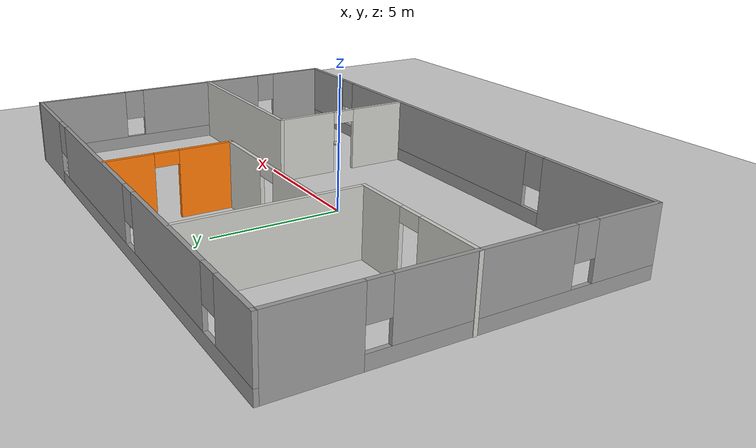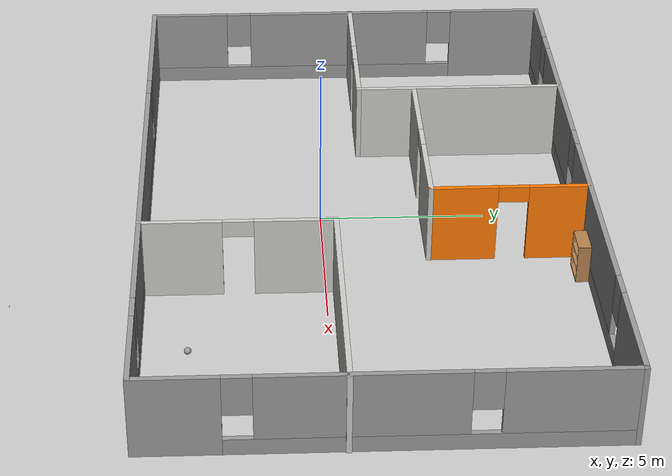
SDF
<sdf version="1.7">
 <world name="default">
  <light name="sun" type="directional">
   <pose>0 0 10 0 -0 0</pose>
   <diffuse>0.8 0.8 0.8 1</diffuse>
   <specular>0.2 0.2 0.2 1</specular>
   <attenuation>
    <range>1000</range>
    <constant>0.9</constant>
    <linear>0.01</linear>
    <quadratic>0.001</quadratic>
   </attenuation>
   <direction>-0.5 0.1 -0.9</direction>
   <spot><inner_angle>0</inner_angle><outer_angle>0</outer_angle><falloff>0</falloff></spot>
  </light>
  <model name="ground_plane">
   <static>1</static>
   <link name="link">
    <collision name="collision">
     <geometry><plane><normal>0 0 1</normal><size>100 100</size></plane></geometry>
     <surface>
      <contact><collide_bitmask>65535</collide_bitmask></contact>
      <friction><ode><mu>100</mu><mu2>50</mu2></ode></friction>
     </surface>
    </collision>
    <visual name="visual">
     <cast_shadows>0</cast_shadows>
     <geometry><plane><normal>0 0 1</normal><size>100 100</size></plane></geometry>
     <material>
      <script><uri>file://media/materials/scripts/gazebo.material</uri><name>Gazebo/Grey</name></script>
     </material>
    </visual>
   </link>
  </model>
  <gravity>0 0 -9.8</gravity>
  <magnetic_field>6e-06 2.3e-05 -4.2e-05</magnetic_field>
  <atmosphere type="adiabatic"/>
  <physics type="ode">
   <max_step_size>0.001</max_step_size>
   <real_time_factor>1</real_time_factor>
   <real_time_update_rate>1000</real_time_update_rate>
  </physics>
  <scene><ambient>0.4 0.4 0.4 1</ambient><background>0.7 0.7 0.7 1</background><shadows>1</shadows></scene>
  <spherical_coordinates>
   <surface_model>EARTH_WGS84</surface_model>
   <latitude_deg>0</latitude_deg>
   <longitude_deg>0</longitude_deg>
   <elevation>0</elevation>
   <heading_deg>0</heading_deg>
  </spherical_coordinates>
  <model name="building">
   <pose>0.90749 1.23439 0 0 -0 0</pose>
   <link name="Wall_36">
    <pose>-9.94002 0.000411 0 0 0 -1.5708</pose>
    <visual name="Wall_36_Visual_0">
     <pose>-5.11376 0 1.25 0 -0 0</pose>
     <geometry><box><size>3.02247 0.15 2.5</size></box></geometry>
     <material>
      <script><uri>file://media/materials/scripts/gazebo.material</uri><name>Gazebo/Grey</name></script>
      <ambient>1 1 1 1</ambient>
     </material>
     <meta><layer>0</layer></meta>
    </visual>
    <collision name="Wall_36_Collision_0">
     <geometry><box><size>3.02247 0.15 2.5</size></box></geometry>
     <pose>-5.11376 0 1.25 0 -0 0</pose>
    </collision>
    <visual name="Wall_36_Visual_1">
     <pose>1.51124 0 0.25 0 -0 0</pose>
     <geometry><box><size>10.2275 0.15 0.5</size></box></geometry>
     <material>
      <script><uri>file://media/materials/scripts/gazebo.material</uri><name>Gazebo/Grey</name></script>
      <ambient>1 1 1 1</ambient>
     </material>
     <meta><layer>0</layer></meta>
    </visual>
    <collision name="Wall_36_Collision_1">
     <geometry><box><size>10.2275 0.15 0.5</size></box></geometry>
     <pose>1.51124 0 0.25 0 -0 0</pose>
    </collision>
    <visual name="Wall_36_Visual_2">
     <pose>0.237934 0 1.5 0 -0 0</pose>
     <geometry><box><size>6.08092 0.15 2</size></box></geometry>
     <material>
      <script><uri>file://media/materials/scripts/gazebo.material</uri><name>Gazebo/Grey</name></script>
      <ambient>1 1 1 1</ambient>
     </material>
     <meta><layer>0</layer></meta>
    </visual>
    <collision name="Wall_36_Collision_2">
     <geometry><box><size>6.08092 0.15 2</size></box></geometry>
     <pose>0.237934 0 1.5 0 -0 0</pose>
    </collision>
    <visual name="Wall_36_Visual_3">
     <pose>5.3517 0 1.5 0 -0 0</pose>
     <geometry><box><size>2.54661 0.15 2</size></box></geometry>
     <material>
      <script><uri>file://media/materials/scripts/gazebo.material</uri><name>Gazebo/Grey</name></script>
      <ambient>1 1 1 1</ambient>
     </material>
     <meta><layer>0</layer></meta>
    </visual>
    <collision name="Wall_36_Collision_3">
     <geometry><box><size>2.54661 0.15 2</size></box></geometry>
     <pose>5.3517 0 1.5 0 -0 0</pose>
    </collision>
    <visual name="Wall_36_Visual_4">
     <pose>-3.20253 0 1.9 0 -0 0</pose>
     <geometry><box><size>0.8 0.15 1.2</size></box></geometry>
     <material>
      <script><uri>file://media/materials/scripts/gazebo.material</uri><name>Gazebo/Grey</name></script>
      <ambient>1 1 1 1</ambient>
     </material>
     <meta><layer>0</layer></meta>
    </visual>
    <collision name="Wall_36_Collision_4">
     <geometry><box><size>0.8 0.15 1.2</size></box></geometry>
     <pose>-3.20253 0 1.9 0 -0 0</pose>
    </collision>
    <visual name="Wall_36_Visual_5">
     <pose>3.67839 0 1.9 0 -0 0</pose>
     <geometry><box><size>0.8 0.15 1.2</size></box></geometry>
     <material>
      <script><uri>file://media/materials/scripts/gazebo.material</uri><name>Gazebo/Grey</name></script>
      <ambient>1 1 1 1</ambient>
     </material>
     <meta><layer>0</layer></meta>
    </visual>
    <collision name="Wall_36_Collision_5">
     <geometry><box><size>0.8 0.15 1.2</size></box></geometry>
     <pose>3.67839 0 1.9 0 -0 0</pose>
    </collision>
   </link>
   <link name="Wall_37">
    <pose>-0.015018 -6.54959 0 0 -0 0</pose>
    <visual name="Wall_37_Visual_0">
     <pose>-7.68289 0 1.25 0 -0 0</pose>
     <geometry><box><size>4.63422 0.15 2.5</size></box></geometry>
     <material>
      <script><uri>file://media/materials/scripts/gazebo.material</uri><name>Gazebo/Grey</name></script>
      <ambient>1 1 1 1</ambient>
     </material>
     <meta><layer>0</layer></meta>
    </visual>
    <collision name="Wall_37_Collision_0">
     <geometry><box><size>4.63422 0.15 2.5</size></box></geometry>
     <pose>-7.68289 0 1.25 0 -0 0</pose>
    </collision>
    <visual name="Wall_37_Visual_1">
     <pose>2.31711 0 0.25 0 -0 0</pose>
     <geometry><box><size>15.3658 0.15 0.5</size></box></geometry>
     <material>
      <script><uri>file://media/materials/scripts/gazebo.material</uri><name>Gazebo/Grey</name></script>
      <ambient>1 1 1 1</ambient>
     </material>
     <meta><layer>0</layer></meta>
    </visual>
    <collision name="Wall_37_Collision_1">
     <geometry><box><size>15.3658 0.15 0.5</size></box></geometry>
     <pose>2.31711 0 0.25 0 -0 0</pose>
    </collision>
    <visual name="Wall_37_Visual_2">
     <pose>0.954291 0 1.5 0 -0 0</pose>
     <geometry><box><size>11.0401 0.15 2</size></box></geometry>
     <material>
      <script><uri>file://media/materials/scripts/gazebo.material</uri><name>Gazebo/Grey</name></script>
      <ambient>1 1 1 1</ambient>
     </material>
     <meta><layer>0</layer></meta>
    </visual>
    <collision name="Wall_37_Collision_2">
     <geometry><box><size>11.0401 0.15 2</size></box></geometry>
     <pose>0.954291 0 1.5 0 -0 0</pose>
    </collision>
    <visual name="Wall_37_Visual_3">
     <pose>8.63718 0 1.5 0 -0 0</pose>
     <geometry><box><size>2.72564 0.15 2</size></box></geometry>
     <material>
      <script><uri>file://media/materials/scripts/gazebo.material</uri><name>Gazebo/Grey</name></script>
      <ambient>1 1 1 1</ambient>
     </material>
     <meta><layer>0</layer></meta>
    </visual>
    <collision name="Wall_37_Collision_3">
     <geometry><box><size>2.72564 0.15 2</size></box></geometry>
     <pose>8.63718 0 1.5 0 -0 0</pose>
    </collision>
    <visual name="Wall_37_Visual_4">
     <pose>-4.96578 0 1.9 0 -0 0</pose>
     <geometry><box><size>0.8 0.15 1.2</size></box></geometry>
     <material>
      <script><uri>file://media/materials/scripts/gazebo.material</uri><name>Gazebo/Grey</name></script>
      <ambient>1 1 1 1</ambient>
     </material>
     <meta><layer>0</layer></meta>
    </visual>
    <collision name="Wall_37_Collision_4">
     <geometry><box><size>0.8 0.15 1.2</size></box></geometry>
     <pose>-4.96578 0 1.9 0 -0 0</pose>
    </collision>
    <visual name="Wall_37_Visual_5">
     <pose>6.87436 0 1.9 0 -0 0</pose>
     <geometry><box><size>0.8 0.15 1.2</size></box></geometry>
     <material>
      <script><uri>file://media/materials/scripts/gazebo.material</uri><name>Gazebo/Grey</name></script>
      <ambient>1 1 1 1</ambient>
     </material>
     <meta><layer>0</layer></meta>
    </visual>
    <collision name="Wall_37_Collision_5">
     <geometry><box><size>0.8 0.15 1.2</size></box></geometry>
     <pose>6.87436 0 1.9 0 -0 0</pose>
    </collision>
   </link>
   <link name="Wall_38">
    <pose>9.90998 0.000411 0 0 -0 1.5708</pose>
    <visual name="Wall_38_Visual_0">
     <pose>-5.41369 0 1.25 0 -0 0</pose>
     <geometry><box><size>2.42263 0.15 2.5</size></box></geometry>
     <material>
      <script><uri>file://media/materials/scripts/gazebo.material</uri><name>Gazebo/Grey</name></script>
      <ambient>1 1 1 1</ambient>
     </material>
     <meta><layer>0</layer></meta>
    </visual>
    <collision name="Wall_38_Collision_0">
     <geometry><box><size>2.42263 0.15 2.5</size></box></geometry>
     <pose>-5.41369 0 1.25 0 -0 0</pose>
    </collision>
    <visual name="Wall_38_Visual_1">
     <pose>1.21131 0 0.25 0 -0 0</pose>
     <geometry><box><size>10.8274 0.15 0.5</size></box></geometry>
     <material>
      <script><uri>file://media/materials/scripts/gazebo.material</uri><name>Gazebo/Grey</name></script>
      <ambient>1 1 1 1</ambient>
     </material>
     <meta><layer>0</layer></meta>
    </visual>
    <collision name="Wall_38_Collision_1">
     <geometry><box><size>10.8274 0.15 0.5</size></box></geometry>
     <pose>1.21131 0 0.25 0 -0 0</pose>
    </collision>
    <visual name="Wall_38_Visual_2">
     <pose>-0.609876 0 1.5 0 -0 0</pose>
     <geometry><box><size>5.585 0.15 2</size></box></geometry>
     <material>
      <script><uri>file://media/materials/scripts/gazebo.material</uri><name>Gazebo/Grey</name></script>
      <ambient>1 1 1 1</ambient>
     </material>
     <meta><layer>0</layer></meta>
    </visual>
    <collision name="Wall_38_Collision_2">
     <geometry><box><size>5.585 0.15 2</size></box></geometry>
     <pose>-0.609876 0 1.5 0 -0 0</pose>
    </collision>
    <visual name="Wall_38_Visual_3">
     <pose>4.80381 0 1.5 0 -0 0</pose>
     <geometry><box><size>3.64238 0.15 2</size></box></geometry>
     <material>
      <script><uri>file://media/materials/scripts/gazebo.material</uri><name>Gazebo/Grey</name></script>
      <ambient>1 1 1 1</ambient>
     </material>
     <meta><layer>0</layer></meta>
    </visual>
    <collision name="Wall_38_Collision_3">
     <geometry><box><size>3.64238 0.15 2</size></box></geometry>
     <pose>4.80381 0 1.5 0 -0 0</pose>
    </collision>
    <visual name="Wall_38_Visual_4">
     <pose>-3.80237 0 1.9 0 -0 0</pose>
     <geometry><box><size>0.8 0.15 1.2</size></box></geometry>
     <material>
      <script><uri>file://media/materials/scripts/gazebo.material</uri><name>Gazebo/Grey</name></script>
      <ambient>1 1 1 1</ambient>
     </material>
     <meta><layer>0</layer></meta>
    </visual>
    <collision name="Wall_38_Collision_4">
     <geometry><box><size>0.8 0.15 1.2</size></box></geometry>
     <pose>-3.80237 0 1.9 0 -0 0</pose>
    </collision>
    <visual name="Wall_38_Visual_5">
     <pose>2.58262 0 1.9 0 -0 0</pose>
     <geometry><box><size>0.8 0.15 1.2</size></box></geometry>
     <material>
      <script><uri>file://media/materials/scripts/gazebo.material</uri><name>Gazebo/Grey</name></script>
      <ambient>1 1 1 1</ambient>
     </material>
     <meta><layer>0</layer></meta>
    </visual>
    <collision name="Wall_38_Collision_5">
     <geometry><box><size>0.8 0.15 1.2</size></box></geometry>
     <pose>2.58262 0 1.9 0 -0 0</pose>
    </collision>
   </link>
   <link name="Wall_39">
    <pose>-0.015018 6.55041 0 0 -0 3.14159</pose>
    <visual name="Wall_39_Visual_0">
     <pose>-8.35822 0 1.25 0 -0 0</pose>
     <geometry><box><size>3.28355 0.15 2.5</size></box></geometry>
     <material>
      <script><uri>file://media/materials/scripts/gazebo.material</uri><name>Gazebo/Grey</name></script>
      <ambient>1 1 1 1</ambient>
     </material>
     <meta><layer>0</layer></meta>
    </visual>
    <collision name="Wall_39_Collision_0">
     <geometry><box><size>3.28355 0.15 2.5</size></box></geometry>
     <pose>-8.35822 0 1.25 0 -0 0</pose>
    </collision>
    <visual name="Wall_39_Visual_1">
     <pose>1.64178 0 0.25 0 -0 0</pose>
     <geometry><box><size>16.7164 0.15 0.5</size></box></geometry>
     <material>
      <script><uri>file://media/materials/scripts/gazebo.material</uri><name>Gazebo/Grey</name></script>
      <ambient>1 1 1 1</ambient>
     </material>
     <meta><layer>0</layer></meta>
    </visual>
    <collision name="Wall_39_Collision_1">
     <geometry><box><size>16.7164 0.15 0.5</size></box></geometry>
     <pose>1.64178 0 0.25 0 -0 0</pose>
    </collision>
    <visual name="Wall_39_Visual_2">
     <pose>-2.47305 0 1.5 0 -0 0</pose>
     <geometry><box><size>6.88679 0.15 2</size></box></geometry>
     <material>
      <script><uri>file://media/materials/scripts/gazebo.material</uri><name>Gazebo/Grey</name></script>
      <ambient>1 1 1 1</ambient>
     </material>
     <meta><layer>0</layer></meta>
    </visual>
    <collision name="Wall_39_Collision_2">
     <geometry><box><size>6.88679 0.15 2</size></box></geometry>
     <pose>-2.47305 0 1.5 0 -0 0</pose>
    </collision>
    <visual name="Wall_39_Visual_3">
     <pose>4.43886 0 1.5 0 -0 0</pose>
     <geometry><box><size>5.33704 0.15 2</size></box></geometry>
     <material>
      <script><uri>file://media/materials/scripts/gazebo.material</uri><name>Gazebo/Grey</name></script>
      <ambient>1 1 1 1</ambient>
     </material>
     <meta><layer>0</layer></meta>
    </visual>
    <collision name="Wall_39_Collision_3">
     <geometry><box><size>5.33704 0.15 2</size></box></geometry>
     <pose>4.43886 0 1.5 0 -0 0</pose>
    </collision>
    <visual name="Wall_39_Visual_4">
     <pose>8.95369 0 1.5 0 -0 0</pose>
     <geometry><box><size>2.09262 0.15 2</size></box></geometry>
     <material>
      <script><uri>file://media/materials/scripts/gazebo.material</uri><name>Gazebo/Grey</name></script>
      <ambient>1 1 1 1</ambient>
     </material>
     <meta><layer>0</layer></meta>
    </visual>
    <collision name="Wall_39_Collision_4">
     <geometry><box><size>2.09262 0.15 2</size></box></geometry>
     <pose>8.95369 0 1.5 0 -0 0</pose>
    </collision>
    <visual name="Wall_39_Visual_5">
     <pose>-6.31645 0 1.9 0 -0 0</pose>
     <geometry><box><size>0.8 0.15 1.2</size></box></geometry>
     <material>
      <script><uri>file://media/materials/scripts/gazebo.material</uri><name>Gazebo/Grey</name></script>
      <ambient>1 1 1 1</ambient>
     </material>
     <meta><layer>0</layer></meta>
    </visual>
    <collision name="Wall_39_Collision_5">
     <geometry><box><size>0.8 0.15 1.2</size></box></geometry>
     <pose>-6.31645 0 1.9 0 -0 0</pose>
    </collision>
    <visual name="Wall_39_Visual_6">
     <pose>1.37034 0 1.9 0 -0 0</pose>
     <geometry><box><size>0.8 0.15 1.2</size></box></geometry>
     <material>
      <script><uri>file://media/materials/scripts/gazebo.material</uri><name>Gazebo/Grey</name></script>
      <ambient>1 1 1 1</ambient>
     </material>
     <meta><layer>0</layer></meta>
    </visual>
    <collision name="Wall_39_Collision_6">
     <geometry><box><size>0.8 0.15 1.2</size></box></geometry>
     <pose>1.37034 0 1.9 0 -0 0</pose>
    </collision>
    <visual name="Wall_39_Visual_7">
     <pose>7.50738 0 1.9 0 -0 0</pose>
     <geometry><box><size>0.8 0.15 1.2</size></box></geometry>
     <material>
      <script><uri>file://media/materials/scripts/gazebo.material</uri><name>Gazebo/Grey</name></script>
      <ambient>1 1 1 1</ambient>
     </material>
     <meta><layer>0</layer></meta>
    </visual>
    <collision name="Wall_39_Collision_7">
     <geometry><box><size>0.8 0.15 1.2</size></box></geometry>
     <pose>7.50738 0 1.9 0 -0 0</pose>
    </collision>
   </link>
   <link name="Wall_41">
    <collision name="Wall_41_Collision">
     <geometry><box><size>6.5 0.15 2.5</size></box></geometry>
     <pose>0 0 1.25 0 -0 0</pose>
    </collision>
    <visual name="Wall_41_Visual">
     <pose>0 0 1.25 0 -0 0</pose>
     <geometry><box><size>6.5 0.15 2.5</size></box></geometry>
     <material>
      <script><uri>file://media/materials/scripts/gazebo.material</uri><name>Gazebo/CeilingTiled</name></script>
      <ambient>0.996078 0.47451 0.0196078 1</ambient>
     </material>
     <meta><layer>0</layer></meta>
    </visual>
    <pose>-4.60886 3.31342 0 0 0 -1.5708</pose>
   </link>
   <link name="Wall_44">
    <collision name="Wall_44_Collision">
     <geometry><box><size>7.25 0.15 2.5</size></box></geometry>
     <pose>0 0 1.25 0 -0 0</pose>
    </collision>
    <visual name="Wall_44_Visual">
     <pose>0 0 1.25 0 -0 0</pose>
     <geometry><box><size>7.25 0.15 2.5</size></box></geometry>
     <material>
      <script><uri>file://media/materials/scripts/gazebo.material</uri><name>Gazebo/CeilingTiled</name></script>
      <ambient>0.996078 0.47451 0.0196078 1</ambient>
     </material>
     <meta><layer>0</layer></meta>
    </visual>
    <pose>6.40886 -0.950411 0 0 -0 3.14159</pose>
   </link>
   <link name="Wall_45">
    <pose>2.85886 -3.75041 0 0 0 -1.5708</pose>
    <visual name="Wall_45_Visual_0">
     <pose>-1.66772 0 1.25 0 -0 0</pose>
     <geometry><box><size>2.41456 0.15 2.5</size></box></geometry>
     <material>
      <script><uri>file://media/materials/scripts/gazebo.material</uri><name>Gazebo/CeilingTiled</name></script>
      <ambient>0.996078 0.47451 0.0196078 1</ambient>
     </material>
     <meta><layer>0</layer></meta>
    </visual>
    <collision name="Wall_45_Collision_0">
     <geometry><box><size>2.41456 0.15 2.5</size></box></geometry>
     <pose>-1.66772 0 1.25 0 -0 0</pose>
    </collision>
    <visual name="Wall_45_Visual_1">
     <pose>1.65728 0 1.25 0 -0 0</pose>
     <geometry><box><size>2.43544 0.15 2.5</size></box></geometry>
     <material>
      <script><uri>file://media/materials/scripts/gazebo.material</uri><name>Gazebo/CeilingTiled</name></script>
      <ambient>0.996078 0.47451 0.0196078 1</ambient>
     </material>
     <meta><layer>0</layer></meta>
    </visual>
    <collision name="Wall_45_Collision_1">
     <geometry><box><size>2.43544 0.15 2.5</size></box></geometry>
     <pose>1.65728 0 1.25 0 -0 0</pose>
    </collision>
    <visual name="Wall_45_Visual_2">
     <pose>-0.010439 0 2.25 0 -0 0</pose>
     <geometry><box><size>0.9 0.15 0.5</size></box></geometry>
     <material>
      <script><uri>file://media/materials/scripts/gazebo.material</uri><name>Gazebo/CeilingTiled</name></script>
      <ambient>0.996078 0.47451 0.0196078 1</ambient>
     </material>
     <meta><layer>0</layer></meta>
    </visual>
    <collision name="Wall_45_Collision_2">
     <geometry><box><size>0.9 0.15 0.5</size></box></geometry>
     <pose>-0.010439 0 2.25 0 -0 0</pose>
    </collision>
   </link>
   <link name="Wall_47">
    <pose>1.34221 4.18842 0 0 0 -1.5708</pose>
    <visual name="Wall_47_Visual_0">
     <pose>-1.47767 0 1.25 0 -0 0</pose>
     <geometry><box><size>1.79466 0.15 2.5</size></box></geometry>
     <material>
      <script><uri>file://media/materials/scripts/gazebo.material</uri><name>Gazebo/Grey</name></script>
      <ambient>0.996078 0.47451 0.0196078 1</ambient>
     </material>
     <meta><layer>0</layer></meta>
    </visual>
    <collision name="Wall_47_Collision_0">
     <geometry><box><size>1.79466 0.15 2.5</size></box></geometry>
     <pose>-1.47767 0 1.25 0 -0 0</pose>
    </collision>
    <visual name="Wall_47_Visual_1">
     <pose>1.34733 0 1.25 0 -0 0</pose>
     <geometry><box><size>2.05534 0.15 2.5</size></box></geometry>
     <material>
      <script><uri>file://media/materials/scripts/gazebo.material</uri><name>Gazebo/Grey</name></script>
      <ambient>0.996078 0.47451 0.0196078 1</ambient>
     </material>
     <meta><layer>0</layer></meta>
    </visual>
    <collision name="Wall_47_Collision_1">
     <geometry><box><size>2.05534 0.15 2.5</size></box></geometry>
     <pose>1.34733 0 1.25 0 -0 0</pose>
    </collision>
    <visual name="Wall_47_Visual_2">
     <pose>-0.130342 0 2.25 0 -0 0</pose>
     <geometry><box><size>0.9 0.15 0.5</size></box></geometry>
     <material>
      <script><uri>file://media/materials/scripts/gazebo.material</uri><name>Gazebo/Grey</name></script>
      <ambient>0.996078 0.47451 0.0196078 1</ambient>
     </material>
     <meta><layer>0</layer></meta>
    </visual>
    <collision name="Wall_47_Collision_2">
     <geometry><box><size>0.9 0.15 0.5</size></box></geometry>
     <pose>-0.130342 0 2.25 0 -0 0</pose>
    </collision>
   </link>
   <link name="Wall_48">
    <pose>-1.58279 1.88842 0 0 -0 3.14159</pose>
    <visual name="Wall_48_Visual_0">
     <pose>-1.73073 0 1.25 0 -0 0</pose>
     <geometry><box><size>2.53854 0.15 2.5</size></box></geometry>
     <material>
      <script><uri>file://media/materials/scripts/gazebo.material</uri><name>Gazebo/CeilingTiled</name></script>
      <ambient>0.996078 0.47451 0.0196078 1</ambient>
     </material>
     <meta><layer>0</layer></meta>
    </visual>
    <collision name="Wall_48_Collision_0">
     <geometry><box><size>2.53854 0.15 2.5</size></box></geometry>
     <pose>-1.73073 0 1.25 0 -0 0</pose>
    </collision>
    <visual name="Wall_48_Visual_1">
     <pose>1.71927 0 1.25 0 -0 0</pose>
     <geometry><box><size>2.56146 0.15 2.5</size></box></geometry>
     <material>
      <script><uri>file://media/materials/scripts/gazebo.material</uri><name>Gazebo/CeilingTiled</name></script>
      <ambient>0.996078 0.47451 0.0196078 1</ambient>
     </material>
     <meta><layer>0</layer></meta>
    </visual>
    <collision name="Wall_48_Collision_1">
     <geometry><box><size>2.56146 0.15 2.5</size></box></geometry>
     <pose>1.71927 0 1.25 0 -0 0</pose>
    </collision>
    <visual name="Wall_48_Visual_2">
     <pose>-0.011458 0 2.25 0 -0 0</pose>
     <geometry><box><size>0.9 0.15 0.5</size></box></geometry>
     <material>
      <script><uri>file://media/materials/scripts/gazebo.material</uri><name>Gazebo/CeilingTiled</name></script>
      <ambient>0.996078 0.47451 0.0196078 1</ambient>
     </material>
     <meta><layer>0</layer></meta>
    </visual>
    <collision name="Wall_48_Collision_2">
     <geometry><box><size>0.9 0.15 0.5</size></box></geometry>
     <pose>-0.011458 0 2.25 0 -0 0</pose>
    </collision>
   </link>
   <link name="Wall_50">
    <pose>-7.28386 0.13842 0 0 -0 3.14159</pose>
    <visual name="Wall_50_Visual_0">
     <pose>-1.72869 0 1.25 0 -0 0</pose>
     <geometry><box><size>2.04262 0.15 2.5</size></box></geometry>
     <material>
      <script><uri>file://media/materials/scripts/gazebo.material</uri><name>Gazebo/CeilingTiled</name></script>
      <ambient>0.996078 0.47451 0.0196078 1</ambient>
     </material>
     <meta><layer>0</layer></meta>
    </visual>
    <collision name="Wall_50_Collision_0">
     <geometry><box><size>2.04262 0.15 2.5</size></box></geometry>
     <pose>-1.72869 0 1.25 0 -0 0</pose>
    </collision>
    <visual name="Wall_50_Visual_1">
     <pose>1.47131 0 1.25 0 -0 0</pose>
     <geometry><box><size>2.55738 0.15 2.5</size></box></geometry>
     <material>
      <script><uri>file://media/materials/scripts/gazebo.material</uri><name>Gazebo/CeilingTiled</name></script>
      <ambient>0.996078 0.47451 0.0196078 1</ambient>
     </material>
     <meta><layer>0</layer></meta>
    </visual>
    <collision name="Wall_50_Collision_1">
     <geometry><box><size>2.55738 0.15 2.5</size></box></geometry>
     <pose>1.47131 0 1.25 0 -0 0</pose>
    </collision>
    <visual name="Wall_50_Visual_2">
     <pose>-0.25738 0 2.25 0 -0 0</pose>
     <geometry><box><size>0.9 0.15 0.5</size></box></geometry>
     <material>
      <script><uri>file://media/materials/scripts/gazebo.material</uri><name>Gazebo/CeilingTiled</name></script>
      <ambient>0.996078 0.47451 0.0196078 1</ambient>
     </material>
     <meta><layer>0</layer></meta>
    </visual>
    <collision name="Wall_50_Collision_2">
     <geometry><box><size>0.9 0.15 0.5</size></box></geometry>
     <pose>-0.25738 0 2.25 0 -0 0</pose>
    </collision>
   </link>
   <static>1</static>
  </model>
  <model name="white_ball">
   <link name="link_0">
    <inertial>
     <mass>1</mass>
     <inertia><ixx>0.1</ixx><ixy>0</ixy><ixz>0</ixz><iyy>0.1</iyy><iyz>0</iyz><izz>0.1</izz></inertia>
    </inertial>
    <visual name="visual">
     <geometry><sphere><radius>0.1</radius></sphere></geometry>
     <material>
      <lighting>1</lighting>
      <script><uri>file://media/materials/scripts/gazebo.material</uri><name>Gazebo/Grey</name></script>
      <shader type="pixel"><normal_map>__default__</normal_map></shader>
      <ambient>1 1 1 1</ambient>
      <diffuse>1 1 1 1</diffuse>
      <specular>1 1 1 1</specular>
      <emissive>1 1 1 1</emissive>
     </material>
    </visual>
    <collision name="collision">
     <geometry><sphere><radius>0.1</radius></sphere></geometry>
     <surface>
      <friction>
       <ode><mu>1</mu><mu2>1</mu2><fdir1>0 0 0</fdir1><slip1>0</slip1><slip2>0</slip2></ode>
       <torsional>
        <coefficient>1</coefficient>
        <patch_radius>0</patch_radius>
        <surface_radius>0</surface_radius>
        <use_patch_radius>1</use_patch_radius>
        <ode><slip>0</slip></ode>
       </torsional>
      </friction>
      <bounce><restitution_coefficient>0</restitution_coefficient><threshold>1e+06</threshold></bounce>
      <contact>
       <collide_without_contact>0</collide_without_contact>
       <collide_without_contact_bitmask>1</collide_without_contact_bitmask>
       <collide_bitmask>1</collide_bitmask>
       <ode>
        <soft_cfm>0</soft_cfm>
        <soft_erp>0.2</soft_erp>
        <kp>1e+13</kp>
        <kd>1</kd>
        <max_vel>0.01</max_vel>
        <min_depth>0</min_depth>
       </ode>
       <bullet>
        <split_impulse>1</split_impulse>
        <split_impulse_penetration_threshold>-0.01</split_impulse_penetration_threshold>
        <soft_cfm>0</soft_cfm>
        <soft_erp>0.2</soft_erp>
        <kp>1e+13</kp>
        <kd>1</kd>
       </bullet>
      </contact>
     </surface>
    </collision>
   </link>
   <static>0</static>
   <pose>6.62178 -3.95439 0.1 0 -0 0</pose>
  </model>
  <model name="bookshelf">
   <static>1</static>
   <link name="link">
    <inertial><mass>1</mass></inertial>
    <collision name="back">
     <pose>0 0.005 0.6 0 -0 0</pose>
     <geometry><box><size>0.9 0.01 1.2</size></box></geometry>
    </collision>
    <visual name="visual1">
     <pose>0 0.005 0.6 0 -0 0</pose>
     <geometry><box><size>0.9 0.01 1.2</size></box></geometry>
     <material>
      <script><uri>file://media/materials/scripts/gazebo.material</uri><name>Gazebo/Wood</name></script>
     </material>
    </visual>
    <collision name="left_side">
     <pose>0.45 -0.195 0.6 0 -0 0</pose>
     <geometry><box><size>0.02 0.4 1.2</size></box></geometry>
    </collision>
    <visual name="visual2">
     <pose>0.45 -0.195 0.6 0 -0 0</pose>
     <geometry><box><size>0.02 0.4 1.2</size></box></geometry>
     <material>
      <script><uri>file://media/materials/scripts/gazebo.material</uri><name>Gazebo/Wood</name></script>
     </material>
    </visual>
    <collision name="right_side">
     <pose>-0.45 -0.195 0.6 0 -0 0</pose>
     <geometry><box><size>0.02 0.4 1.2</size></box></geometry>
    </collision>
    <visual name="visual3">
     <pose>-0.45 -0.195 0.6 0 -0 0</pose>
     <geometry><box><size>0.02 0.4 1.2</size></box></geometry>
     <material>
      <script><uri>file://media/materials/scripts/gazebo.material</uri><name>Gazebo/Wood</name></script>
     </material>
    </visual>
    <collision name="bottom">
     <pose>0 -0.195 0.03 0 -0 0</pose>
     <geometry><box><size>0.88 0.4 0.06</size></box></geometry>
    </collision>
    <visual name="visual4">
     <pose>0 -0.195 0.03 0 -0 0</pose>
     <geometry><box><size>0.88 0.4 0.06</size></box></geometry>
     <material>
      <script><uri>file://media/materials/scripts/gazebo.material</uri><name>Gazebo/Wood</name></script>
     </material>
    </visual>
    <collision name="top">
     <pose>0 -0.195 1.19 0 -0 0</pose>
     <geometry><box><size>0.88 0.4 0.02</size></box></geometry>
    </collision>
    <visual name="visual5">
     <pose>0 -0.195 1.19 0 -0 0</pose>
     <geometry><box><size>0.88 0.4 0.02</size></box></geometry>
     <material>
      <script><uri>file://media/materials/scripts/gazebo.material</uri><name>Gazebo/Wood</name></script>
     </material>
    </visual>
    <collision name="low_shelf">
     <pose>0 -0.195 0.43 0 -0 0</pose>
     <geometry><box><size>0.88 0.4 0.02</size></box></geometry>
    </collision>
    <visual name="visual6">
     <pose>0 -0.195 0.43 0 -0 0</pose>
     <geometry><box><size>0.88 0.4 0.02</size></box></geometry>
     <material>
      <script><uri>file://media/materials/scripts/gazebo.material</uri><name>Gazebo/Wood</name></script>
     </material>
    </visual>
    <collision name="high_shelf">
     <pose>0 -0.195 0.8 0 -0 0</pose>
     <geometry><box><size>0.88 0.4 0.02</size></box></geometry>
    </collision>
    <visual name="visual7">
     <pose>0 -0.195 0.8 0 -0 0</pose>
     <geometry><box><size>0.88 0.4 0.02</size></box></geometry>
     <material>
      <script><uri>file://media/materials/scripts/gazebo.material</uri><name>Gazebo/Wood</name></script>
     </material>
    </visual>
   </link>
   <pose>3.15079 7.72128 0 0 -0 0</pose>
  </model>
  <model name="metal_peg">
   <link name="link">
    <pose>0 0 0.031 0 -0 0</pose>
    <inertial>
     <mass>0.0121</mass>
     <inertia>
      <ixx>3.90898e-06</ixx>
      <ixy>0</ixy>
      <ixz>0</ixz>
      <iyy>3.90898e-06</iyy>
      <iyz>0</iyz>
      <izz>6.58845e-08</izz>
     </inertia>
    </inertial>
    <collision name="collision">
     <geometry><cylinder><radius>0.0033</radius><length>0.062</length></cylinder></geometry>
     <surface>
      <contact>
       <poissons_ratio>0.305</poissons_ratio>
       <elastic_modulus>2e+11</elastic_modulus>
       <ode><kp>100000</kp><kd>100</kd><max_vel>100</max_vel><min_depth>0.001</min_depth></ode>
      </contact>
      <friction>
       <torsional>
        <coefficient>1</coefficient>
        <use_patch_radius>0</use_patch_radius>
        <surface_radius>0.01</surface_radius>
       </torsional>
      </friction>
     </surface>
    </collision>
    <visual name="visual">
     <geometry><cylinder><radius>0.0033</radius><length>0.062</length></cylinder></geometry>
     <material>
      <script><uri>file://media/materials/scripts/gazebo.material</uri><name>Gazebo/Grey</name></script>
     </material>
    </visual>
   </link>
   <pose>4.26632 -9.11346 -0.001 -5e-06 5e-06 -1e-06</pose>
  </model>
 </world>
</sdf>
